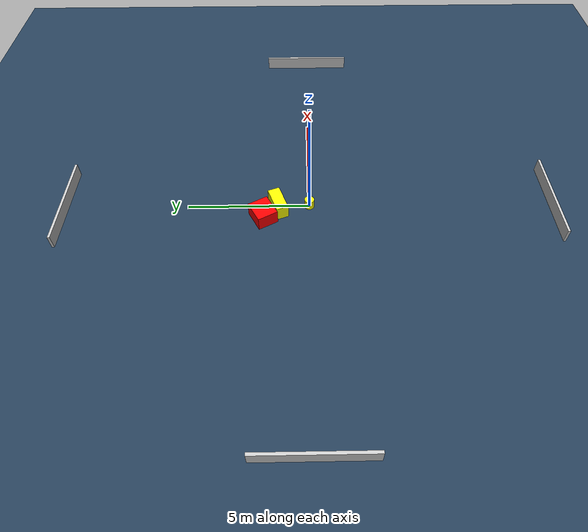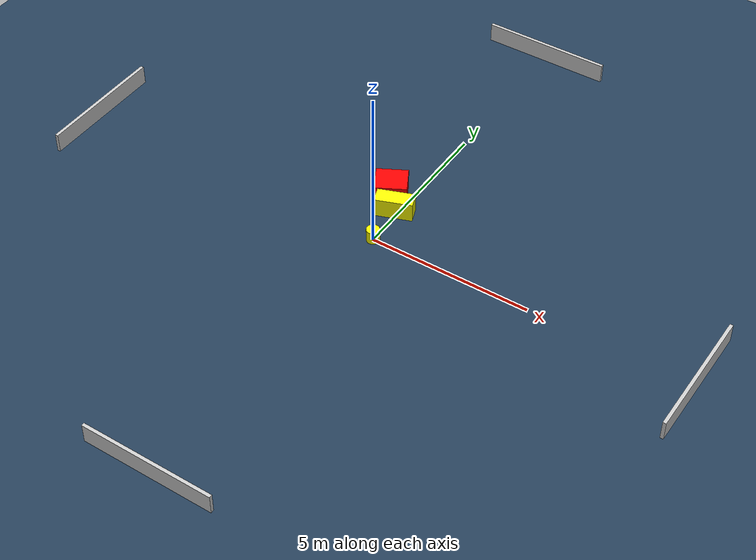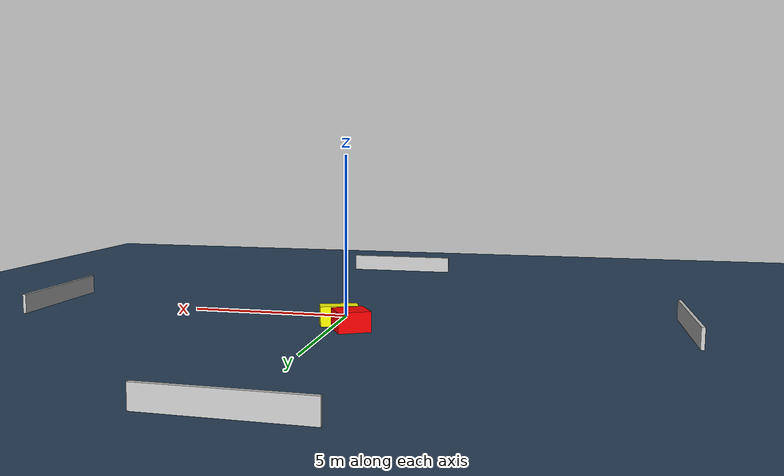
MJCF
<?xml version="1.0" ?>
<mujoco model="generated_environment">
  <option timestep="0.01" integrator="RK4" cone="elliptic"/>
  <default>
    <geom density="1"/>
  </default>
  <asset>
    <texture builtin="gradient" height="3072" name="skybox" rgb1="0.3 0.5 0.7" rgb2="0 0 0" type="skybox" width="512"/>
    <texture builtin="checker" height="300" name="groundplane" rgb1="0.2 0.3 0.4" rgb2="0.1 0.2 0.3" type="2d" width="300"/>
    <material name="groundplane" reflectance="0.2" texrepeat="5 5" texture="groundplane"/>
  </asset>
  <worldbody>
    <light dir="0 0 -1" directional="true" pos="0 0 1.5"/>
    <geom condim="3" friction="0.5 0.005 0.001" material="groundplane" name="floor" pos="0 0 0" size="0 0 0.05" type="plane"/>
    <body name="walls">
      <geom name="wall_1" condim="4" pos="-10.0 0.0 0.3" rgba="0.800000011920929 0.800000011920929 0.800000011920929 1.0" size="0.05 2.0 0.3" type="box"/>
      <geom name="wall_2" condim="4" pos="10.0 0.0 0.3" rgba="0.800000011920929 0.800000011920929 0.800000011920929 1.0" size="0.05 2.0 0.3" type="box"/>
      <geom name="wall_3" condim="4" pos="0.0 -10.0 0.3" rgba="0.800000011920929 0.800000011920929 0.800000011920929 1.0" size="2.0 0.05 0.3" type="box"/>
      <geom name="wall_4" condim="4" pos="0.0 10.0 0.3" rgba="0.800000011920929 0.800000011920929 0.800000011920929 1.0" size="2.0 0.05 0.3" type="box"/>
    </body>
    <body name="robot">
      <joint name="joint_x" type="slide" pos="0 0 0" axis="1 0 0"/>
      <joint name="joint_y" type="slide" pos="0 0 0" axis="0 1 0"/>
      <geom name="robot" type="cylinder" pos="0.0 0.0 0.2" size="0.2 0.2 0.0" mass="5.0" friction="1.0 0.005 0.0001" condim="4" rgba="1.0 1.0 0.0 1.0"/>
    </body>
    <body name="obstacle_1_movable">
      <geom name="obstacle_1_movable" condim="4" pos="-0.10233151469367445 1.2809151767623994 0.3" euler="0 0 200.62430778299688" friction="0.0 0.005 0.001" rgba="1.0 1.0 0.0 1.0" size="0.5658002966158681 0.24581229365287113 0.3" type="box" mass="0.1"/>
      <joint type="free"/>
    </body>
    <body name="obstacle_2_static">
      <geom name="obstacle_2_static" condim="4" pos="-0.6104289697393606 1.8832515952852644 0.3" euler="0 0 118.75529361804085" friction="0.0 0.005 0.001" rgba="1.0 0.0 0.0 1.0" size="0.423563274876502 0.478585580277651 0.3" type="box"/>
    </body>
  </worldbody>
  <actuator>
    <motor name="actuator_x" joint="joint_x" gear="1" ctrlrange="-1 1"/>
    <motor name="actuator_y" joint="joint_y" gear="1" ctrlrange="-1 1"/>
  </actuator>
</mujoco>
